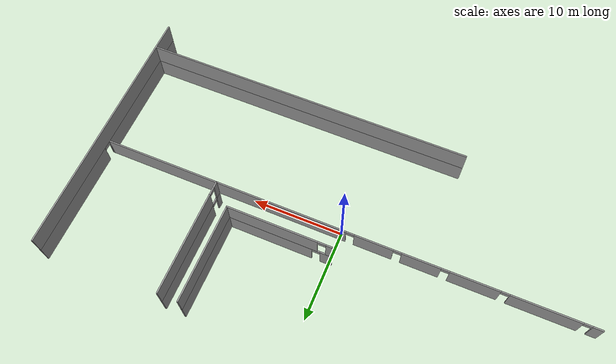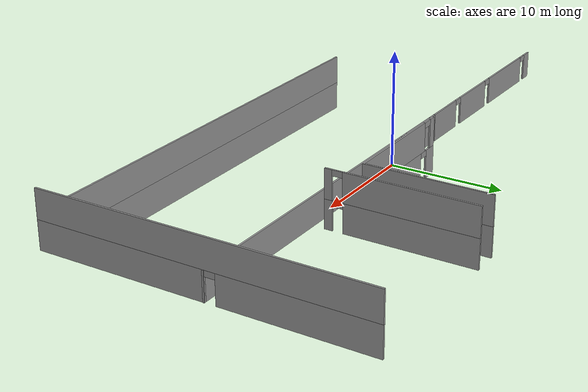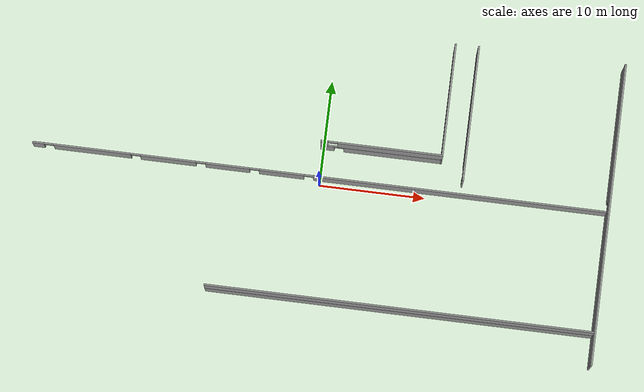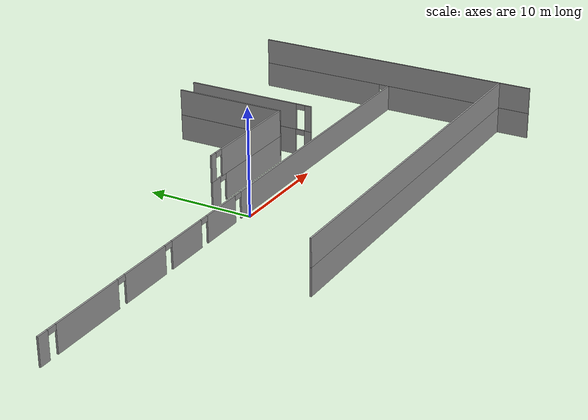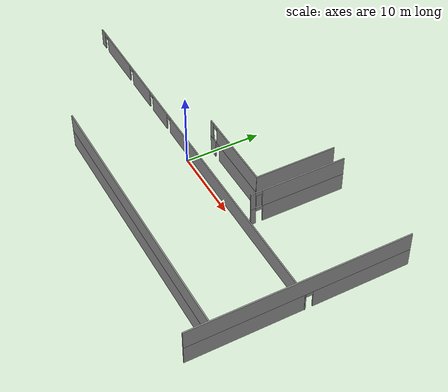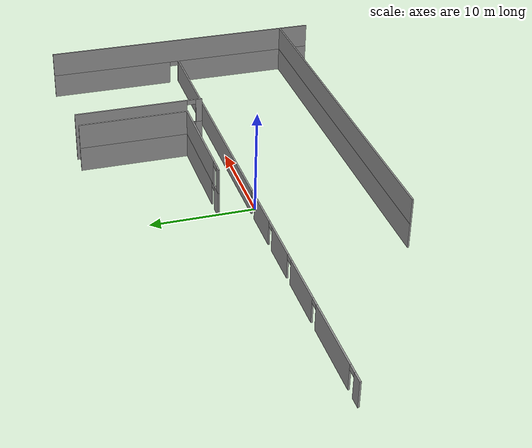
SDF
<sdf version="1.6">
 <model name="Biggest">
  <link name="Wall_104">
   <pose>8.84208 -11.1518 0 0 -0 0</pose>
   <visual name="Wall_104_Visual">
    <pose>0 0 1.25 0 -0 0</pose>
    <geometry><box><size>36.5 0.15 2.5</size></box></geometry>
    <material>
     <script><uri>file://media/materials/scripts/gazebo.material</uri><name>Gazebo/Grey</name></script>
     <ambient>1 1 1 1</ambient>
    </material>
    <meta><layer>0</layer></meta>
   </visual>
   <collision name="Wall_104_Collision">
    <pose>0 0 1.25 0 -0 0</pose>
    <geometry><box><size>36.5 0.15 2.5</size></box></geometry>
    <surface>
     <friction>
      <ode><mu>1</mu><mu2>1</mu2><fdir1>0 0 0</fdir1><slip1>0</slip1><slip2>0</slip2></ode>
      <torsional>
       <coefficient>1</coefficient>
       <patch_radius>0</patch_radius>
       <surface_radius>0</surface_radius>
       <use_patch_radius>1</use_patch_radius>
       <ode><slip>0</slip></ode>
      </torsional>
     </friction>
     <bounce><restitution_coefficient>0</restitution_coefficient><threshold>1e+06</threshold></bounce>
     <contact>
      <collide_without_contact>0</collide_without_contact>
      <collide_without_contact_bitmask>1</collide_without_contact_bitmask>
      <collide_bitmask>1</collide_bitmask>
      <ode>
       <soft_cfm>0</soft_cfm>
       <soft_erp>0.2</soft_erp>
       <kp>1e+13</kp>
       <kd>1</kd>
       <max_vel>0.01</max_vel>
       <min_depth>0</min_depth>
      </ode>
      <bullet>
       <split_impulse>1</split_impulse>
       <split_impulse_penetration_threshold>-0.01</split_impulse_penetration_threshold>
       <soft_cfm>0</soft_cfm>
       <soft_erp>0.2</soft_erp>
       <kp>1e+13</kp>
       <kd>1</kd>
      </bullet>
     </contact>
    </surface>
   </collision>
  </link>
  <link name="Wall_109">
   <pose>5.45478 3.56991 0 0 -0 0</pose>
   <visual name="Wall_109_Visual_1">
    <pose>1.09108 0 1.25 0 -0 0</pose>
    <geometry><box><size>9.31784 0.15 2.5</size></box></geometry>
    <material>
     <script><uri>file://media/materials/scripts/gazebo.material</uri><name>Gazebo/Grey</name></script>
     <ambient>1 1 1 1</ambient>
    </material>
    <meta><layer>0</layer></meta>
   </visual>
   <visual name="Wall_109_Visual_2">
    <pose>-4.01784 0 2.25 0 -0 0</pose>
    <geometry><box><size>0.9 0.15 0.5</size></box></geometry>
    <material>
     <script><uri>file://media/materials/scripts/gazebo.material</uri><name>Gazebo/Grey</name></script>
     <ambient>1 1 1 1</ambient>
    </material>
    <meta><layer>0</layer></meta>
   </visual>
   <visual name="Wall_109_Visual_0">
    <pose>-5.10892 0 1.25 0 -0 0</pose>
    <geometry><box><size>1.28216 0.15 2.5</size></box></geometry>
    <material>
     <script><uri>file://media/materials/scripts/gazebo.material</uri><name>Gazebo/Grey</name></script>
     <ambient>1 1 1 1</ambient>
    </material>
    <meta><layer>0</layer></meta>
   </visual>
   <collision name="Wall_109_Collision_2">
    <pose>-4.01784 0 2.25 0 -0 0</pose>
    <geometry><box><size>0.9 0.15 0.5</size></box></geometry>
    <surface>
     <friction>
      <ode><mu>1</mu><mu2>1</mu2><fdir1>0 0 0</fdir1><slip1>0</slip1><slip2>0</slip2></ode>
      <torsional>
       <coefficient>1</coefficient>
       <patch_radius>0</patch_radius>
       <surface_radius>0</surface_radius>
       <use_patch_radius>1</use_patch_radius>
       <ode><slip>0</slip></ode>
      </torsional>
     </friction>
     <bounce><restitution_coefficient>0</restitution_coefficient><threshold>1e+06</threshold></bounce>
     <contact>
      <collide_without_contact>0</collide_without_contact>
      <collide_without_contact_bitmask>1</collide_without_contact_bitmask>
      <collide_bitmask>1</collide_bitmask>
      <ode>
       <soft_cfm>0</soft_cfm>
       <soft_erp>0.2</soft_erp>
       <kp>1e+13</kp>
       <kd>1</kd>
       <max_vel>0.01</max_vel>
       <min_depth>0</min_depth>
      </ode>
      <bullet>
       <split_impulse>1</split_impulse>
       <split_impulse_penetration_threshold>-0.01</split_impulse_penetration_threshold>
       <soft_cfm>0</soft_cfm>
       <soft_erp>0.2</soft_erp>
       <kp>1e+13</kp>
       <kd>1</kd>
      </bullet>
     </contact>
    </surface>
   </collision>
   <collision name="Wall_109_Collision_1">
    <pose>1.09108 0 1.25 0 -0 0</pose>
    <geometry><box><size>9.31784 0.15 2.5</size></box></geometry>
    <surface>
     <friction>
      <ode><mu>1</mu><mu2>1</mu2><fdir1>0 0 0</fdir1><slip1>0</slip1><slip2>0</slip2></ode>
      <torsional>
       <coefficient>1</coefficient>
       <patch_radius>0</patch_radius>
       <surface_radius>0</surface_radius>
       <use_patch_radius>1</use_patch_radius>
       <ode><slip>0</slip></ode>
      </torsional>
     </friction>
     <bounce><restitution_coefficient>0</restitution_coefficient><threshold>1e+06</threshold></bounce>
     <contact>
      <collide_without_contact>0</collide_without_contact>
      <collide_without_contact_bitmask>1</collide_without_contact_bitmask>
      <collide_bitmask>1</collide_bitmask>
      <ode>
       <soft_cfm>0</soft_cfm>
       <soft_erp>0.2</soft_erp>
       <kp>1e+13</kp>
       <kd>1</kd>
       <max_vel>0.01</max_vel>
       <min_depth>0</min_depth>
      </ode>
      <bullet>
       <split_impulse>1</split_impulse>
       <split_impulse_penetration_threshold>-0.01</split_impulse_penetration_threshold>
       <soft_cfm>0</soft_cfm>
       <soft_erp>0.2</soft_erp>
       <kp>1e+13</kp>
       <kd>1</kd>
      </bullet>
     </contact>
    </surface>
   </collision>
   <collision name="Wall_109_Collision_0">
    <pose>-5.10892 0 1.25 0 -0 0</pose>
    <geometry><box><size>1.28216 0.15 2.5</size></box></geometry>
    <surface>
     <friction>
      <ode><mu>1</mu><mu2>1</mu2><fdir1>0 0 0</fdir1><slip1>0</slip1><slip2>0</slip2></ode>
      <torsional>
       <coefficient>1</coefficient>
       <patch_radius>0</patch_radius>
       <surface_radius>0</surface_radius>
       <use_patch_radius>1</use_patch_radius>
       <ode><slip>0</slip></ode>
      </torsional>
     </friction>
     <bounce><restitution_coefficient>0</restitution_coefficient><threshold>1e+06</threshold></bounce>
     <contact>
      <collide_without_contact>0</collide_without_contact>
      <collide_without_contact_bitmask>1</collide_without_contact_bitmask>
      <collide_bitmask>1</collide_bitmask>
      <ode>
       <soft_cfm>0</soft_cfm>
       <soft_erp>0.2</soft_erp>
       <kp>1e+13</kp>
       <kd>1</kd>
       <max_vel>0.01</max_vel>
       <min_depth>0</min_depth>
      </ode>
      <bullet>
       <split_impulse>1</split_impulse>
       <split_impulse_penetration_threshold>-0.01</split_impulse_penetration_threshold>
       <soft_cfm>0</soft_cfm>
       <soft_erp>0.2</soft_erp>
       <kp>1e+13</kp>
       <kd>1</kd>
      </bullet>
     </contact>
    </surface>
   </collision>
  </link>
  <link name="Wall_110">
   <pose>11.1298 8.86991 0 0 -0 1.5708</pose>
   <visual name="Wall_110_Visual">
    <pose>0 0 1.25 0 -0 0</pose>
    <geometry><box><size>10.75 0.15 2.5</size></box></geometry>
    <material>
     <script><uri>file://media/materials/scripts/gazebo.material</uri><name>Gazebo/Grey</name></script>
     <ambient>1 1 1 1</ambient>
    </material>
    <meta><layer>0</layer></meta>
   </visual>
   <collision name="Wall_110_Collision">
    <pose>0 0 1.25 0 -0 0</pose>
    <geometry><box><size>10.75 0.15 2.5</size></box></geometry>
    <surface>
     <friction>
      <ode><mu>1</mu><mu2>1</mu2><fdir1>0 0 0</fdir1><slip1>0</slip1><slip2>0</slip2></ode>
      <torsional>
       <coefficient>1</coefficient>
       <patch_radius>0</patch_radius>
       <surface_radius>0</surface_radius>
       <use_patch_radius>1</use_patch_radius>
       <ode><slip>0</slip></ode>
      </torsional>
     </friction>
     <bounce><restitution_coefficient>0</restitution_coefficient><threshold>1e+06</threshold></bounce>
     <contact>
      <collide_without_contact>0</collide_without_contact>
      <collide_without_contact_bitmask>1</collide_without_contact_bitmask>
      <collide_bitmask>1</collide_bitmask>
      <ode>
       <soft_cfm>0</soft_cfm>
       <soft_erp>0.2</soft_erp>
       <kp>1e+13</kp>
       <kd>1</kd>
       <max_vel>0.01</max_vel>
       <min_depth>0</min_depth>
      </ode>
      <bullet>
       <split_impulse>1</split_impulse>
       <split_impulse_penetration_threshold>-0.01</split_impulse_penetration_threshold>
       <soft_cfm>0</soft_cfm>
       <soft_erp>0.2</soft_erp>
       <kp>1e+13</kp>
       <kd>1</kd>
      </bullet>
     </contact>
    </surface>
   </collision>
  </link>
  <link name="Wall_116">
   <pose>13.3143 7.89097 0 0 0 -1.5708</pose>
   <visual name="Wall_116_Visual_0">
    <pose>-0.798632 0 1.25 0 -0 0</pose>
    <geometry><box><size>11.1527 0.15 2.5</size></box></geometry>
    <material>
     <script><uri>file://media/materials/scripts/gazebo.material</uri><name>Gazebo/Grey</name></script>
     <ambient>1 1 1 1</ambient>
    </material>
    <meta><layer>0</layer></meta>
   </visual>
   <visual name="Wall_116_Visual_1">
    <pose>6.02637 0 1.25 0 -0 0</pose>
    <geometry><box><size>0.697265 0.15 2.5</size></box></geometry>
    <material>
     <script><uri>file://media/materials/scripts/gazebo.material</uri><name>Gazebo/Grey</name></script>
     <ambient>1 1 1 1</ambient>
    </material>
    <meta><layer>0</layer></meta>
   </visual>
   <visual name="Wall_116_Visual_2">
    <pose>5.22774 0 2.25 0 -0 0</pose>
    <geometry><box><size>0.9 0.15 0.5</size></box></geometry>
    <material>
     <script><uri>file://media/materials/scripts/gazebo.material</uri><name>Gazebo/Grey</name></script>
     <ambient>1 1 1 1</ambient>
    </material>
    <meta><layer>0</layer></meta>
   </visual>
   <collision name="Wall_116_Collision_0">
    <pose>-0.798632 0 1.25 0 -0 0</pose>
    <geometry><box><size>11.1527 0.15 2.5</size></box></geometry>
    <surface>
     <friction>
      <ode><mu>1</mu><mu2>1</mu2><fdir1>0 0 0</fdir1><slip1>0</slip1><slip2>0</slip2></ode>
      <torsional>
       <coefficient>1</coefficient>
       <patch_radius>0</patch_radius>
       <surface_radius>0</surface_radius>
       <use_patch_radius>1</use_patch_radius>
       <ode><slip>0</slip></ode>
      </torsional>
     </friction>
     <bounce><restitution_coefficient>0</restitution_coefficient><threshold>1e+06</threshold></bounce>
     <contact>
      <collide_without_contact>0</collide_without_contact>
      <collide_without_contact_bitmask>1</collide_without_contact_bitmask>
      <collide_bitmask>1</collide_bitmask>
      <ode>
       <soft_cfm>0</soft_cfm>
       <soft_erp>0.2</soft_erp>
       <kp>1e+13</kp>
       <kd>1</kd>
       <max_vel>0.01</max_vel>
       <min_depth>0</min_depth>
      </ode>
      <bullet>
       <split_impulse>1</split_impulse>
       <split_impulse_penetration_threshold>-0.01</split_impulse_penetration_threshold>
       <soft_cfm>0</soft_cfm>
       <soft_erp>0.2</soft_erp>
       <kp>1e+13</kp>
       <kd>1</kd>
      </bullet>
     </contact>
    </surface>
   </collision>
   <collision name="Wall_116_Collision_1">
    <pose>6.02637 0 1.25 0 -0 0</pose>
    <geometry><box><size>0.697265 0.15 2.5</size></box></geometry>
    <surface>
     <friction>
      <ode><mu>1</mu><mu2>1</mu2><fdir1>0 0 0</fdir1><slip1>0</slip1><slip2>0</slip2></ode>
      <torsional>
       <coefficient>1</coefficient>
       <patch_radius>0</patch_radius>
       <surface_radius>0</surface_radius>
       <use_patch_radius>1</use_patch_radius>
       <ode><slip>0</slip></ode>
      </torsional>
     </friction>
     <bounce><restitution_coefficient>0</restitution_coefficient><threshold>1e+06</threshold></bounce>
     <contact>
      <collide_without_contact>0</collide_without_contact>
      <collide_without_contact_bitmask>1</collide_without_contact_bitmask>
      <collide_bitmask>1</collide_bitmask>
      <ode>
       <soft_cfm>0</soft_cfm>
       <soft_erp>0.2</soft_erp>
       <kp>1e+13</kp>
       <kd>1</kd>
       <max_vel>0.01</max_vel>
       <min_depth>0</min_depth>
      </ode>
      <bullet>
       <split_impulse>1</split_impulse>
       <split_impulse_penetration_threshold>-0.01</split_impulse_penetration_threshold>
       <soft_cfm>0</soft_cfm>
       <soft_erp>0.2</soft_erp>
       <kp>1e+13</kp>
       <kd>1</kd>
      </bullet>
     </contact>
    </surface>
   </collision>
   <collision name="Wall_116_Collision_2">
    <pose>5.22774 0 2.25 0 -0 0</pose>
    <geometry><box><size>0.9 0.15 0.5</size></box></geometry>
    <surface>
     <friction>
      <ode><mu>1</mu><mu2>1</mu2><fdir1>0 0 0</fdir1><slip1>0</slip1><slip2>0</slip2></ode>
      <torsional>
       <coefficient>1</coefficient>
       <patch_radius>0</patch_radius>
       <surface_radius>0</surface_radius>
       <use_patch_radius>1</use_patch_radius>
       <ode><slip>0</slip></ode>
      </torsional>
     </friction>
     <bounce><restitution_coefficient>0</restitution_coefficient><threshold>1e+06</threshold></bounce>
     <contact>
      <collide_without_contact>0</collide_without_contact>
      <collide_without_contact_bitmask>1</collide_without_contact_bitmask>
      <collide_bitmask>1</collide_bitmask>
      <ode>
       <soft_cfm>0</soft_cfm>
       <soft_erp>0.2</soft_erp>
       <kp>1e+13</kp>
       <kd>1</kd>
       <max_vel>0.01</max_vel>
       <min_depth>0</min_depth>
      </ode>
      <bullet>
       <split_impulse>1</split_impulse>
       <split_impulse_penetration_threshold>-0.01</split_impulse_penetration_threshold>
       <soft_cfm>0</soft_cfm>
       <soft_erp>0.2</soft_erp>
       <kp>1e+13</kp>
       <kd>1</kd>
      </bullet>
     </contact>
    </surface>
   </collision>
  </link>
  <link name="Wall_119">
   <pose>27.1536 0.010278 2.5 0 0 -1.5708</pose>
   <visual name="Wall_119_Visual">
    <pose>0 0 1.25 0 -0 0</pose>
    <geometry><box><size>28.5 0.15 2.5</size></box></geometry>
    <material>
     <script><uri>file://media/materials/scripts/gazebo.material</uri><name>Gazebo/Grey</name></script>
     <ambient>1 1 1 1</ambient>
    </material>
    <meta><layer>1</layer></meta>
   </visual>
   <collision name="Wall_119_Collision">
    <pose>0 0 1.25 0 -0 0</pose>
    <geometry><box><size>28.5 0.15 2.5</size></box></geometry>
    <surface>
     <friction>
      <ode><mu>1</mu><mu2>1</mu2><fdir1>0 0 0</fdir1><slip1>0</slip1><slip2>0</slip2></ode>
      <torsional>
       <coefficient>1</coefficient>
       <patch_radius>0</patch_radius>
       <surface_radius>0</surface_radius>
       <use_patch_radius>1</use_patch_radius>
       <ode><slip>0</slip></ode>
      </torsional>
     </friction>
     <bounce><restitution_coefficient>0</restitution_coefficient><threshold>1e+06</threshold></bounce>
     <contact>
      <collide_without_contact>0</collide_without_contact>
      <collide_without_contact_bitmask>1</collide_without_contact_bitmask>
      <collide_bitmask>1</collide_bitmask>
      <ode>
       <soft_cfm>0</soft_cfm>
       <soft_erp>0.2</soft_erp>
       <kp>1e+13</kp>
       <kd>1</kd>
       <max_vel>0.01</max_vel>
       <min_depth>0</min_depth>
      </ode>
      <bullet>
       <split_impulse>1</split_impulse>
       <split_impulse_penetration_threshold>-0.01</split_impulse_penetration_threshold>
       <soft_cfm>0</soft_cfm>
       <soft_erp>0.2</soft_erp>
       <kp>1e+13</kp>
       <kd>1</kd>
      </bullet>
     </contact>
    </surface>
   </collision>
  </link>
  <link name="Wall_130">
   <pose>8.84208 -11.1518 2.5 0 -0 0</pose>
   <visual name="Wall_130_Visual">
    <pose>0 0 1.25 0 -0 0</pose>
    <geometry><box><size>36.5 0.15 2.5</size></box></geometry>
    <material>
     <script><uri>file://media/materials/scripts/gazebo.material</uri><name>Gazebo/Grey</name></script>
     <ambient>1 1 1 1</ambient>
    </material>
    <meta><layer>1</layer></meta>
   </visual>
   <collision name="Wall_130_Collision">
    <pose>0 0 1.25 0 -0 0</pose>
    <geometry><box><size>36.5 0.15 2.5</size></box></geometry>
    <surface>
     <friction>
      <ode><mu>1</mu><mu2>1</mu2><fdir1>0 0 0</fdir1><slip1>0</slip1><slip2>0</slip2></ode>
      <torsional>
       <coefficient>1</coefficient>
       <patch_radius>0</patch_radius>
       <surface_radius>0</surface_radius>
       <use_patch_radius>1</use_patch_radius>
       <ode><slip>0</slip></ode>
      </torsional>
     </friction>
     <bounce><restitution_coefficient>0</restitution_coefficient><threshold>1e+06</threshold></bounce>
     <contact>
      <collide_without_contact>0</collide_without_contact>
      <collide_without_contact_bitmask>1</collide_without_contact_bitmask>
      <collide_bitmask>1</collide_bitmask>
      <ode>
       <soft_cfm>0</soft_cfm>
       <soft_erp>0.2</soft_erp>
       <kp>1e+13</kp>
       <kd>1</kd>
       <max_vel>0.01</max_vel>
       <min_depth>0</min_depth>
      </ode>
      <bullet>
       <split_impulse>1</split_impulse>
       <split_impulse_penetration_threshold>-0.01</split_impulse_penetration_threshold>
       <soft_cfm>0</soft_cfm>
       <soft_erp>0.2</soft_erp>
       <kp>1e+13</kp>
       <kd>1</kd>
      </bullet>
     </contact>
    </surface>
   </collision>
  </link>
  <link name="Wall_133">
   <pose>5.45478 3.56991 2.5 0 -0 0</pose>
   <visual name="Wall_133_Visual_0">
    <pose>-5.4052 0 1.25 0 -0 0</pose>
    <geometry><box><size>0.68959 0.15 2.5</size></box></geometry>
    <material>
     <script><uri>file://media/materials/scripts/gazebo.material</uri><name>Gazebo/Grey</name></script>
     <ambient>1 1 1 1</ambient>
    </material>
    <meta><layer>1</layer></meta>
   </visual>
   <visual name="Wall_133_Visual_1">
    <pose>0.794795 0 1.25 0 -0 0</pose>
    <geometry><box><size>9.91041 0.15 2.5</size></box></geometry>
    <material>
     <script><uri>file://media/materials/scripts/gazebo.material</uri><name>Gazebo/Grey</name></script>
     <ambient>1 1 1 1</ambient>
    </material>
    <meta><layer>1</layer></meta>
   </visual>
   <visual name="Wall_133_Visual_2">
    <pose>-4.61041 0 2.25 0 -0 0</pose>
    <geometry><box><size>0.9 0.15 0.5</size></box></geometry>
    <material>
     <script><uri>file://media/materials/scripts/gazebo.material</uri><name>Gazebo/Grey</name></script>
     <ambient>1 1 1 1</ambient>
    </material>
    <meta><layer>1</layer></meta>
   </visual>
   <collision name="Wall_133_Collision_0">
    <pose>-5.4052 0 1.25 0 -0 0</pose>
    <geometry><box><size>0.68959 0.15 2.5</size></box></geometry>
    <surface>
     <friction>
      <ode><mu>1</mu><mu2>1</mu2><fdir1>0 0 0</fdir1><slip1>0</slip1><slip2>0</slip2></ode>
      <torsional>
       <coefficient>1</coefficient>
       <patch_radius>0</patch_radius>
       <surface_radius>0</surface_radius>
       <use_patch_radius>1</use_patch_radius>
       <ode><slip>0</slip></ode>
      </torsional>
     </friction>
     <bounce><restitution_coefficient>0</restitution_coefficient><threshold>1e+06</threshold></bounce>
     <contact>
      <collide_without_contact>0</collide_without_contact>
      <collide_without_contact_bitmask>1</collide_without_contact_bitmask>
      <collide_bitmask>1</collide_bitmask>
      <ode>
       <soft_cfm>0</soft_cfm>
       <soft_erp>0.2</soft_erp>
       <kp>1e+13</kp>
       <kd>1</kd>
       <max_vel>0.01</max_vel>
       <min_depth>0</min_depth>
      </ode>
      <bullet>
       <split_impulse>1</split_impulse>
       <split_impulse_penetration_threshold>-0.01</split_impulse_penetration_threshold>
       <soft_cfm>0</soft_cfm>
       <soft_erp>0.2</soft_erp>
       <kp>1e+13</kp>
       <kd>1</kd>
      </bullet>
     </contact>
    </surface>
   </collision>
   <collision name="Wall_133_Collision_1">
    <pose>0.794795 0 1.25 0 -0 0</pose>
    <geometry><box><size>9.91041 0.15 2.5</size></box></geometry>
    <surface>
     <friction>
      <ode><mu>1</mu><mu2>1</mu2><fdir1>0 0 0</fdir1><slip1>0</slip1><slip2>0</slip2></ode>
      <torsional>
       <coefficient>1</coefficient>
       <patch_radius>0</patch_radius>
       <surface_radius>0</surface_radius>
       <use_patch_radius>1</use_patch_radius>
       <ode><slip>0</slip></ode>
      </torsional>
     </friction>
     <bounce><restitution_coefficient>0</restitution_coefficient><threshold>1e+06</threshold></bounce>
     <contact>
      <collide_without_contact>0</collide_without_contact>
      <collide_without_contact_bitmask>1</collide_without_contact_bitmask>
      <collide_bitmask>1</collide_bitmask>
      <ode>
       <soft_cfm>0</soft_cfm>
       <soft_erp>0.2</soft_erp>
       <kp>1e+13</kp>
       <kd>1</kd>
       <max_vel>0.01</max_vel>
       <min_depth>0</min_depth>
      </ode>
      <bullet>
       <split_impulse>1</split_impulse>
       <split_impulse_penetration_threshold>-0.01</split_impulse_penetration_threshold>
       <soft_cfm>0</soft_cfm>
       <soft_erp>0.2</soft_erp>
       <kp>1e+13</kp>
       <kd>1</kd>
      </bullet>
     </contact>
    </surface>
   </collision>
   <collision name="Wall_133_Collision_2">
    <pose>-4.61041 0 2.25 0 -0 0</pose>
    <geometry><box><size>0.9 0.15 0.5</size></box></geometry>
    <surface>
     <friction>
      <ode><mu>1</mu><mu2>1</mu2><fdir1>0 0 0</fdir1><slip1>0</slip1><slip2>0</slip2></ode>
      <torsional>
       <coefficient>1</coefficient>
       <patch_radius>0</patch_radius>
       <surface_radius>0</surface_radius>
       <use_patch_radius>1</use_patch_radius>
       <ode><slip>0</slip></ode>
      </torsional>
     </friction>
     <bounce><restitution_coefficient>0</restitution_coefficient><threshold>1e+06</threshold></bounce>
     <contact>
      <collide_without_contact>0</collide_without_contact>
      <collide_without_contact_bitmask>1</collide_without_contact_bitmask>
      <collide_bitmask>1</collide_bitmask>
      <ode>
       <soft_cfm>0</soft_cfm>
       <soft_erp>0.2</soft_erp>
       <kp>1e+13</kp>
       <kd>1</kd>
       <max_vel>0.01</max_vel>
       <min_depth>0</min_depth>
      </ode>
      <bullet>
       <split_impulse>1</split_impulse>
       <split_impulse_penetration_threshold>-0.01</split_impulse_penetration_threshold>
       <soft_cfm>0</soft_cfm>
       <soft_erp>0.2</soft_erp>
       <kp>1e+13</kp>
       <kd>1</kd>
      </bullet>
     </contact>
    </surface>
   </collision>
  </link>
  <link name="Wall_134">
   <pose>11.1298 8.86991 2.5 0 -0 1.5708</pose>
   <visual name="Wall_134_Visual">
    <pose>0 0 1.25 0 -0 0</pose>
    <geometry><box><size>10.75 0.15 2.5</size></box></geometry>
    <material>
     <script><uri>file://media/materials/scripts/gazebo.material</uri><name>Gazebo/Grey</name></script>
     <ambient>1 1 1 1</ambient>
    </material>
    <meta><layer>1</layer></meta>
   </visual>
   <collision name="Wall_134_Collision">
    <pose>0 0 1.25 0 -0 0</pose>
    <geometry><box><size>10.75 0.15 2.5</size></box></geometry>
    <surface>
     <friction>
      <ode><mu>1</mu><mu2>1</mu2><fdir1>0 0 0</fdir1><slip1>0</slip1><slip2>0</slip2></ode>
      <torsional>
       <coefficient>1</coefficient>
       <patch_radius>0</patch_radius>
       <surface_radius>0</surface_radius>
       <use_patch_radius>1</use_patch_radius>
       <ode><slip>0</slip></ode>
      </torsional>
     </friction>
     <bounce><restitution_coefficient>0</restitution_coefficient><threshold>1e+06</threshold></bounce>
     <contact>
      <collide_without_contact>0</collide_without_contact>
      <collide_without_contact_bitmask>1</collide_without_contact_bitmask>
      <collide_bitmask>1</collide_bitmask>
      <ode>
       <soft_cfm>0</soft_cfm>
       <soft_erp>0.2</soft_erp>
       <kp>1e+13</kp>
       <kd>1</kd>
       <max_vel>0.01</max_vel>
       <min_depth>0</min_depth>
      </ode>
      <bullet>
       <split_impulse>1</split_impulse>
       <split_impulse_penetration_threshold>-0.01</split_impulse_penetration_threshold>
       <soft_cfm>0</soft_cfm>
       <soft_erp>0.2</soft_erp>
       <kp>1e+13</kp>
       <kd>1</kd>
      </bullet>
     </contact>
    </surface>
   </collision>
  </link>
  <link name="Wall_135">
   <pose>13.3143 7.89097 2.5 0 0 -1.5708</pose>
   <visual name="Wall_135_Visual_0">
    <pose>-0.768708 0 1.25 0 -0 0</pose>
    <geometry><box><size>11.2126 0.15 2.5</size></box></geometry>
    <material>
     <script><uri>file://media/materials/scripts/gazebo.material</uri><name>Gazebo/Grey</name></script>
     <ambient>1 1 1 1</ambient>
    </material>
    <meta><layer>1</layer></meta>
   </visual>
   <visual name="Wall_135_Visual_1">
    <pose>6.05629 0 1.25 0 -0 0</pose>
    <geometry><box><size>0.637416 0.15 2.5</size></box></geometry>
    <material>
     <script><uri>file://media/materials/scripts/gazebo.material</uri><name>Gazebo/Grey</name></script>
     <ambient>1 1 1 1</ambient>
    </material>
    <meta><layer>1</layer></meta>
   </visual>
   <visual name="Wall_135_Visual_2">
    <pose>5.28758 0 2.25 0 -0 0</pose>
    <geometry><box><size>0.9 0.15 0.5</size></box></geometry>
    <material>
     <script><uri>file://media/materials/scripts/gazebo.material</uri><name>Gazebo/Grey</name></script>
     <ambient>1 1 1 1</ambient>
    </material>
    <meta><layer>1</layer></meta>
   </visual>
   <collision name="Wall_135_Collision_0">
    <pose>-0.768708 0 1.25 0 -0 0</pose>
    <geometry><box><size>11.2126 0.15 2.5</size></box></geometry>
    <surface>
     <friction>
      <ode><mu>1</mu><mu2>1</mu2><fdir1>0 0 0</fdir1><slip1>0</slip1><slip2>0</slip2></ode>
      <torsional>
       <coefficient>1</coefficient>
       <patch_radius>0</patch_radius>
       <surface_radius>0</surface_radius>
       <use_patch_radius>1</use_patch_radius>
       <ode><slip>0</slip></ode>
      </torsional>
     </friction>
     <bounce><restitution_coefficient>0</restitution_coefficient><threshold>1e+06</threshold></bounce>
     <contact>
      <collide_without_contact>0</collide_without_contact>
      <collide_without_contact_bitmask>1</collide_without_contact_bitmask>
      <collide_bitmask>1</collide_bitmask>
      <ode>
       <soft_cfm>0</soft_cfm>
       <soft_erp>0.2</soft_erp>
       <kp>1e+13</kp>
       <kd>1</kd>
       <max_vel>0.01</max_vel>
       <min_depth>0</min_depth>
      </ode>
      <bullet>
       <split_impulse>1</split_impulse>
       <split_impulse_penetration_threshold>-0.01</split_impulse_penetration_threshold>
       <soft_cfm>0</soft_cfm>
       <soft_erp>0.2</soft_erp>
       <kp>1e+13</kp>
       <kd>1</kd>
      </bullet>
     </contact>
    </surface>
   </collision>
   <collision name="Wall_135_Collision_1">
    <pose>6.05629 0 1.25 0 -0 0</pose>
    <geometry><box><size>0.637416 0.15 2.5</size></box></geometry>
    <surface>
     <friction>
      <ode><mu>1</mu><mu2>1</mu2><fdir1>0 0 0</fdir1><slip1>0</slip1><slip2>0</slip2></ode>
      <torsional>
       <coefficient>1</coefficient>
       <patch_radius>0</patch_radius>
       <surface_radius>0</surface_radius>
       <use_patch_radius>1</use_patch_radius>
       <ode><slip>0</slip></ode>
      </torsional>
     </friction>
     <bounce><restitution_coefficient>0</restitution_coefficient><threshold>1e+06</threshold></bounce>
     <contact>
      <collide_without_contact>0</collide_without_contact>
      <collide_without_contact_bitmask>1</collide_without_contact_bitmask>
      <collide_bitmask>1</collide_bitmask>
      <ode>
       <soft_cfm>0</soft_cfm>
       <soft_erp>0.2</soft_erp>
       <kp>1e+13</kp>
       <kd>1</kd>
       <max_vel>0.01</max_vel>
       <min_depth>0</min_depth>
      </ode>
      <bullet>
       <split_impulse>1</split_impulse>
       <split_impulse_penetration_threshold>-0.01</split_impulse_penetration_threshold>
       <soft_cfm>0</soft_cfm>
       <soft_erp>0.2</soft_erp>
       <kp>1e+13</kp>
       <kd>1</kd>
      </bullet>
     </contact>
    </surface>
   </collision>
   <collision name="Wall_135_Collision_2">
    <pose>5.28758 0 2.25 0 -0 0</pose>
    <geometry><box><size>0.9 0.15 0.5</size></box></geometry>
    <surface>
     <friction>
      <ode><mu>1</mu><mu2>1</mu2><fdir1>0 0 0</fdir1><slip1>0</slip1><slip2>0</slip2></ode>
      <torsional>
       <coefficient>1</coefficient>
       <patch_radius>0</patch_radius>
       <surface_radius>0</surface_radius>
       <use_patch_radius>1</use_patch_radius>
       <ode><slip>0</slip></ode>
      </torsional>
     </friction>
     <bounce><restitution_coefficient>0</restitution_coefficient><threshold>1e+06</threshold></bounce>
     <contact>
      <collide_without_contact>0</collide_without_contact>
      <collide_without_contact_bitmask>1</collide_without_contact_bitmask>
      <collide_bitmask>1</collide_bitmask>
      <ode>
       <soft_cfm>0</soft_cfm>
       <soft_erp>0.2</soft_erp>
       <kp>1e+13</kp>
       <kd>1</kd>
       <max_vel>0.01</max_vel>
       <min_depth>0</min_depth>
      </ode>
      <bullet>
       <split_impulse>1</split_impulse>
       <split_impulse_penetration_threshold>-0.01</split_impulse_penetration_threshold>
       <soft_cfm>0</soft_cfm>
       <soft_erp>0.2</soft_erp>
       <kp>1e+13</kp>
       <kd>1</kd>
      </bullet>
     </contact>
    </surface>
   </collision>
  </link>
  <link name="Wall_84">
   <pose>27.1536 0.010278 0 0 0 -1.5708</pose>
   <visual name="Wall_84_Visual_0">
    <pose>-7.86931 0 1.25 0 -0 0</pose>
    <geometry><box><size>12.7614 0.15 2.5</size></box></geometry>
    <material>
     <script><uri>file://media/materials/scripts/gazebo.material</uri><name>Gazebo/Grey</name></script>
     <ambient>1 1 1 1</ambient>
    </material>
    <meta><layer>0</layer></meta>
   </visual>
   <visual name="Wall_84_Visual_1">
    <pose>6.83069 0 1.25 0 -0 0</pose>
    <geometry><box><size>14.8386 0.15 2.5</size></box></geometry>
    <material>
     <script><uri>file://media/materials/scripts/gazebo.material</uri><name>Gazebo/Grey</name></script>
     <ambient>1 1 1 1</ambient>
    </material>
    <meta><layer>0</layer></meta>
   </visual>
   <visual name="Wall_84_Visual_2">
    <pose>-1.03862 0 2.25 0 -0 0</pose>
    <geometry><box><size>0.9 0.15 0.5</size></box></geometry>
    <material>
     <script><uri>file://media/materials/scripts/gazebo.material</uri><name>Gazebo/Grey</name></script>
     <ambient>1 1 1 1</ambient>
    </material>
    <meta><layer>0</layer></meta>
   </visual>
   <collision name="Wall_84_Collision_1">
    <pose>6.83069 0 1.25 0 -0 0</pose>
    <geometry><box><size>14.8386 0.15 2.5</size></box></geometry>
    <surface>
     <friction>
      <ode><mu>1</mu><mu2>1</mu2><fdir1>0 0 0</fdir1><slip1>0</slip1><slip2>0</slip2></ode>
      <torsional>
       <coefficient>1</coefficient>
       <patch_radius>0</patch_radius>
       <surface_radius>0</surface_radius>
       <use_patch_radius>1</use_patch_radius>
       <ode><slip>0</slip></ode>
      </torsional>
     </friction>
     <bounce><restitution_coefficient>0</restitution_coefficient><threshold>1e+06</threshold></bounce>
     <contact>
      <collide_without_contact>0</collide_without_contact>
      <collide_without_contact_bitmask>1</collide_without_contact_bitmask>
      <collide_bitmask>1</collide_bitmask>
      <ode>
       <soft_cfm>0</soft_cfm>
       <soft_erp>0.2</soft_erp>
       <kp>1e+13</kp>
       <kd>1</kd>
       <max_vel>0.01</max_vel>
       <min_depth>0</min_depth>
      </ode>
      <bullet>
       <split_impulse>1</split_impulse>
       <split_impulse_penetration_threshold>-0.01</split_impulse_penetration_threshold>
       <soft_cfm>0</soft_cfm>
       <soft_erp>0.2</soft_erp>
       <kp>1e+13</kp>
       <kd>1</kd>
      </bullet>
     </contact>
    </surface>
   </collision>
   <collision name="Wall_84_Collision_0">
    <pose>-7.86931 0 1.25 0 -0 0</pose>
    <geometry><box><size>12.7614 0.15 2.5</size></box></geometry>
    <surface>
     <friction>
      <ode><mu>1</mu><mu2>1</mu2><fdir1>0 0 0</fdir1><slip1>0</slip1><slip2>0</slip2></ode>
      <torsional>
       <coefficient>1</coefficient>
       <patch_radius>0</patch_radius>
       <surface_radius>0</surface_radius>
       <use_patch_radius>1</use_patch_radius>
       <ode><slip>0</slip></ode>
      </torsional>
     </friction>
     <bounce><restitution_coefficient>0</restitution_coefficient><threshold>1e+06</threshold></bounce>
     <contact>
      <collide_without_contact>0</collide_without_contact>
      <collide_without_contact_bitmask>1</collide_without_contact_bitmask>
      <collide_bitmask>1</collide_bitmask>
      <ode>
       <soft_cfm>0</soft_cfm>
       <soft_erp>0.2</soft_erp>
       <kp>1e+13</kp>
       <kd>1</kd>
       <max_vel>0.01</max_vel>
       <min_depth>0</min_depth>
      </ode>
      <bullet>
       <split_impulse>1</split_impulse>
       <split_impulse_penetration_threshold>-0.01</split_impulse_penetration_threshold>
       <soft_cfm>0</soft_cfm>
       <soft_erp>0.2</soft_erp>
       <kp>1e+13</kp>
       <kd>1</kd>
      </bullet>
     </contact>
    </surface>
   </collision>
   <collision name="Wall_84_Collision_2">
    <pose>-1.03862 0 2.25 0 -0 0</pose>
    <geometry><box><size>0.9 0.15 0.5</size></box></geometry>
    <surface>
     <friction>
      <ode><mu>1</mu><mu2>1</mu2><fdir1>0 0 0</fdir1><slip1>0</slip1><slip2>0</slip2></ode>
      <torsional>
       <coefficient>1</coefficient>
       <patch_radius>0</patch_radius>
       <surface_radius>0</surface_radius>
       <use_patch_radius>1</use_patch_radius>
       <ode><slip>0</slip></ode>
      </torsional>
     </friction>
     <bounce><restitution_coefficient>0</restitution_coefficient><threshold>1e+06</threshold></bounce>
     <contact>
      <collide_without_contact>0</collide_without_contact>
      <collide_without_contact_bitmask>1</collide_without_contact_bitmask>
      <collide_bitmask>1</collide_bitmask>
      <ode>
       <soft_cfm>0</soft_cfm>
       <soft_erp>0.2</soft_erp>
       <kp>1e+13</kp>
       <kd>1</kd>
       <max_vel>0.01</max_vel>
       <min_depth>0</min_depth>
      </ode>
      <bullet>
       <split_impulse>1</split_impulse>
       <split_impulse_penetration_threshold>-0.01</split_impulse_penetration_threshold>
       <soft_cfm>0</soft_cfm>
       <soft_erp>0.2</soft_erp>
       <kp>1e+13</kp>
       <kd>1</kd>
      </bullet>
     </contact>
    </surface>
   </collision>
  </link>
  <link name="Wall_92">
   <pose>0.021436 0.51725 0 0 -0 0</pose>
   <visual name="Wall_92_Visual_0">
    <pose>-26.707 0 1.25 0 -0 0</pose>
    <geometry><box><size>1.08602 0.15 2.5</size></box></geometry>
    <material>
     <script><uri>file://media/materials/scripts/gazebo.material</uri><name>Gazebo/Grey</name></script>
     <ambient>1 1 1 1</ambient>
    </material>
    <meta><layer>0</layer></meta>
   </visual>
   <visual name="Wall_92_Visual_1">
    <pose>-21.6015 0 1.25 0 -0 0</pose>
    <geometry><box><size>7.325 0.15 2.5</size></box></geometry>
    <material>
     <script><uri>file://media/materials/scripts/gazebo.material</uri><name>Gazebo/Grey</name></script>
     <ambient>1 1 1 1</ambient>
    </material>
    <meta><layer>0</layer></meta>
   </visual>
   <visual name="Wall_92_Visual_2">
    <pose>-14.4046 0 1.25 0 -0 0</pose>
    <geometry><box><size>5.26875 0.15 2.5</size></box></geometry>
    <material>
     <script><uri>file://media/materials/scripts/gazebo.material</uri><name>Gazebo/Grey</name></script>
     <ambient>1 1 1 1</ambient>
    </material>
    <meta><layer>0</layer></meta>
   </visual>
   <visual name="Wall_92_Visual_3">
    <pose>-8.77697 0 1.25 0 -0 0</pose>
    <geometry><box><size>4.18651 0.15 2.5</size></box></geometry>
    <material>
     <script><uri>file://media/materials/scripts/gazebo.material</uri><name>Gazebo/Grey</name></script>
     <ambient>1 1 1 1</ambient>
    </material>
    <meta><layer>0</layer></meta>
   </visual>
   <visual name="Wall_92_Visual_4">
    <pose>-3.66339 0 1.25 0 -0 0</pose>
    <geometry><box><size>4.24063 0.15 2.5</size></box></geometry>
    <material>
     <script><uri>file://media/materials/scripts/gazebo.material</uri><name>Gazebo/Grey</name></script>
     <ambient>1 1 1 1</ambient>
    </material>
    <meta><layer>0</layer></meta>
   </visual>
   <visual name="Wall_92_Visual_5">
    <pose>13.3035 0 1.25 0 -0 0</pose>
    <geometry><box><size>27.8931 0.15 2.5</size></box></geometry>
    <material>
     <script><uri>file://media/materials/scripts/gazebo.material</uri><name>Gazebo/Grey</name></script>
     <ambient>1 1 1 1</ambient>
    </material>
    <meta><layer>0</layer></meta>
   </visual>
   <visual name="Wall_92_Visual_6">
    <pose>-25.714 0 2.25 0 -0 0</pose>
    <geometry><box><size>0.9 0.15 0.5</size></box></geometry>
    <material>
     <script><uri>file://media/materials/scripts/gazebo.material</uri><name>Gazebo/Grey</name></script>
     <ambient>1 1 1 1</ambient>
    </material>
    <meta><layer>0</layer></meta>
   </visual>
   <visual name="Wall_92_Visual_7">
    <pose>-17.489 0 2.25 0 -0 0</pose>
    <geometry><box><size>0.9 0.15 0.5</size></box></geometry>
    <material>
     <script><uri>file://media/materials/scripts/gazebo.material</uri><name>Gazebo/Grey</name></script>
     <ambient>1 1 1 1</ambient>
    </material>
    <meta><layer>0</layer></meta>
   </visual>
   <visual name="Wall_92_Visual_8">
    <pose>-11.3202 0 2.25 0 -0 0</pose>
    <geometry><box><size>0.9 0.15 0.5</size></box></geometry>
    <material>
     <script><uri>file://media/materials/scripts/gazebo.material</uri><name>Gazebo/Grey</name></script>
     <ambient>1 1 1 1</ambient>
    </material>
    <meta><layer>0</layer></meta>
   </visual>
   <visual name="Wall_92_Visual_9">
    <pose>-6.23371 0 2.25 0 -0 0</pose>
    <geometry><box><size>0.9 0.15 0.5</size></box></geometry>
    <material>
     <script><uri>file://media/materials/scripts/gazebo.material</uri><name>Gazebo/Grey</name></script>
     <ambient>1 1 1 1</ambient>
    </material>
    <meta><layer>0</layer></meta>
   </visual>
   <visual name="Wall_92_Visual_10">
    <pose>-1.09308 0 2.25 0 -0 0</pose>
    <geometry><box><size>0.9 0.15 0.5</size></box></geometry>
    <material>
     <script><uri>file://media/materials/scripts/gazebo.material</uri><name>Gazebo/Grey</name></script>
     <ambient>1 1 1 1</ambient>
    </material>
    <meta><layer>0</layer></meta>
   </visual>
   <collision name="Wall_92_Collision_0">
    <pose>-26.707 0 1.25 0 -0 0</pose>
    <geometry><box><size>1.08602 0.15 2.5</size></box></geometry>
    <surface>
     <friction>
      <ode><mu>1</mu><mu2>1</mu2><fdir1>0 0 0</fdir1><slip1>0</slip1><slip2>0</slip2></ode>
      <torsional>
       <coefficient>1</coefficient>
       <patch_radius>0</patch_radius>
       <surface_radius>0</surface_radius>
       <use_patch_radius>1</use_patch_radius>
       <ode><slip>0</slip></ode>
      </torsional>
     </friction>
     <bounce><restitution_coefficient>0</restitution_coefficient><threshold>1e+06</threshold></bounce>
     <contact>
      <collide_without_contact>0</collide_without_contact>
      <collide_without_contact_bitmask>1</collide_without_contact_bitmask>
      <collide_bitmask>1</collide_bitmask>
      <ode>
       <soft_cfm>0</soft_cfm>
       <soft_erp>0.2</soft_erp>
       <kp>1e+13</kp>
       <kd>1</kd>
       <max_vel>0.01</max_vel>
       <min_depth>0</min_depth>
      </ode>
      <bullet>
       <split_impulse>1</split_impulse>
       <split_impulse_penetration_threshold>-0.01</split_impulse_penetration_threshold>
       <soft_cfm>0</soft_cfm>
       <soft_erp>0.2</soft_erp>
       <kp>1e+13</kp>
       <kd>1</kd>
      </bullet>
     </contact>
    </surface>
   </collision>
   <collision name="Wall_92_Collision_1">
    <pose>-21.6015 0 1.25 0 -0 0</pose>
    <geometry><box><size>7.325 0.15 2.5</size></box></geometry>
    <surface>
     <friction>
      <ode><mu>1</mu><mu2>1</mu2><fdir1>0 0 0</fdir1><slip1>0</slip1><slip2>0</slip2></ode>
      <torsional>
       <coefficient>1</coefficient>
       <patch_radius>0</patch_radius>
       <surface_radius>0</surface_radius>
       <use_patch_radius>1</use_patch_radius>
       <ode><slip>0</slip></ode>
      </torsional>
     </friction>
     <bounce><restitution_coefficient>0</restitution_coefficient><threshold>1e+06</threshold></bounce>
     <contact>
      <collide_without_contact>0</collide_without_contact>
      <collide_without_contact_bitmask>1</collide_without_contact_bitmask>
      <collide_bitmask>1</collide_bitmask>
      <ode>
       <soft_cfm>0</soft_cfm>
       <soft_erp>0.2</soft_erp>
       <kp>1e+13</kp>
       <kd>1</kd>
       <max_vel>0.01</max_vel>
       <min_depth>0</min_depth>
      </ode>
      <bullet>
       <split_impulse>1</split_impulse>
       <split_impulse_penetration_threshold>-0.01</split_impulse_penetration_threshold>
       <soft_cfm>0</soft_cfm>
       <soft_erp>0.2</soft_erp>
       <kp>1e+13</kp>
       <kd>1</kd>
      </bullet>
     </contact>
    </surface>
   </collision>
   <collision name="Wall_92_Collision_2">
    <pose>-14.4046 0 1.25 0 -0 0</pose>
    <geometry><box><size>5.26875 0.15 2.5</size></box></geometry>
    <surface>
     <friction>
      <ode><mu>1</mu><mu2>1</mu2><fdir1>0 0 0</fdir1><slip1>0</slip1><slip2>0</slip2></ode>
      <torsional>
       <coefficient>1</coefficient>
       <patch_radius>0</patch_radius>
       <surface_radius>0</surface_radius>
       <use_patch_radius>1</use_patch_radius>
       <ode><slip>0</slip></ode>
      </torsional>
     </friction>
     <bounce><restitution_coefficient>0</restitution_coefficient><threshold>1e+06</threshold></bounce>
     <contact>
      <collide_without_contact>0</collide_without_contact>
      <collide_without_contact_bitmask>1</collide_without_contact_bitmask>
      <collide_bitmask>1</collide_bitmask>
      <ode>
       <soft_cfm>0</soft_cfm>
       <soft_erp>0.2</soft_erp>
       <kp>1e+13</kp>
       <kd>1</kd>
       <max_vel>0.01</max_vel>
       <min_depth>0</min_depth>
      </ode>
      <bullet>
       <split_impulse>1</split_impulse>
       <split_impulse_penetration_threshold>-0.01</split_impulse_penetration_threshold>
       <soft_cfm>0</soft_cfm>
       <soft_erp>0.2</soft_erp>
       <kp>1e+13</kp>
       <kd>1</kd>
      </bullet>
     </contact>
    </surface>
   </collision>
   <collision name="Wall_92_Collision_3">
    <pose>-8.77697 0 1.25 0 -0 0</pose>
    <geometry><box><size>4.18651 0.15 2.5</size></box></geometry>
    <surface>
     <friction>
      <ode><mu>1</mu><mu2>1</mu2><fdir1>0 0 0</fdir1><slip1>0</slip1><slip2>0</slip2></ode>
      <torsional>
       <coefficient>1</coefficient>
       <patch_radius>0</patch_radius>
       <surface_radius>0</surface_radius>
       <use_patch_radius>1</use_patch_radius>
       <ode><slip>0</slip></ode>
      </torsional>
     </friction>
     <bounce><restitution_coefficient>0</restitution_coefficient><threshold>1e+06</threshold></bounce>
     <contact>
      <collide_without_contact>0</collide_without_contact>
      <collide_without_contact_bitmask>1</collide_without_contact_bitmask>
      <collide_bitmask>1</collide_bitmask>
      <ode>
       <soft_cfm>0</soft_cfm>
       <soft_erp>0.2</soft_erp>
       <kp>1e+13</kp>
       <kd>1</kd>
       <max_vel>0.01</max_vel>
       <min_depth>0</min_depth>
      </ode>
      <bullet>
       <split_impulse>1</split_impulse>
       <split_impulse_penetration_threshold>-0.01</split_impulse_penetration_threshold>
       <soft_cfm>0</soft_cfm>
       <soft_erp>0.2</soft_erp>
       <kp>1e+13</kp>
       <kd>1</kd>
      </bullet>
     </contact>
    </surface>
   </collision>
   <collision name="Wall_92_Collision_4">
    <pose>-3.66339 0 1.25 0 -0 0</pose>
    <geometry><box><size>4.24063 0.15 2.5</size></box></geometry>
    <surface>
     <friction>
      <ode><mu>1</mu><mu2>1</mu2><fdir1>0 0 0</fdir1><slip1>0</slip1><slip2>0</slip2></ode>
      <torsional>
       <coefficient>1</coefficient>
       <patch_radius>0</patch_radius>
       <surface_radius>0</surface_radius>
       <use_patch_radius>1</use_patch_radius>
       <ode><slip>0</slip></ode>
      </torsional>
     </friction>
     <bounce><restitution_coefficient>0</restitution_coefficient><threshold>1e+06</threshold></bounce>
     <contact>
      <collide_without_contact>0</collide_without_contact>
      <collide_without_contact_bitmask>1</collide_without_contact_bitmask>
      <collide_bitmask>1</collide_bitmask>
      <ode>
       <soft_cfm>0</soft_cfm>
       <soft_erp>0.2</soft_erp>
       <kp>1e+13</kp>
       <kd>1</kd>
       <max_vel>0.01</max_vel>
       <min_depth>0</min_depth>
      </ode>
      <bullet>
       <split_impulse>1</split_impulse>
       <split_impulse_penetration_threshold>-0.01</split_impulse_penetration_threshold>
       <soft_cfm>0</soft_cfm>
       <soft_erp>0.2</soft_erp>
       <kp>1e+13</kp>
       <kd>1</kd>
      </bullet>
     </contact>
    </surface>
   </collision>
   <collision name="Wall_92_Collision_5">
    <pose>13.3035 0 1.25 0 -0 0</pose>
    <geometry><box><size>27.8931 0.15 2.5</size></box></geometry>
    <surface>
     <friction>
      <ode><mu>1</mu><mu2>1</mu2><fdir1>0 0 0</fdir1><slip1>0</slip1><slip2>0</slip2></ode>
      <torsional>
       <coefficient>1</coefficient>
       <patch_radius>0</patch_radius>
       <surface_radius>0</surface_radius>
       <use_patch_radius>1</use_patch_radius>
       <ode><slip>0</slip></ode>
      </torsional>
     </friction>
     <bounce><restitution_coefficient>0</restitution_coefficient><threshold>1e+06</threshold></bounce>
     <contact>
      <collide_without_contact>0</collide_without_contact>
      <collide_without_contact_bitmask>1</collide_without_contact_bitmask>
      <collide_bitmask>1</collide_bitmask>
      <ode>
       <soft_cfm>0</soft_cfm>
       <soft_erp>0.2</soft_erp>
       <kp>1e+13</kp>
       <kd>1</kd>
       <max_vel>0.01</max_vel>
       <min_depth>0</min_depth>
      </ode>
      <bullet>
       <split_impulse>1</split_impulse>
       <split_impulse_penetration_threshold>-0.01</split_impulse_penetration_threshold>
       <soft_cfm>0</soft_cfm>
       <soft_erp>0.2</soft_erp>
       <kp>1e+13</kp>
       <kd>1</kd>
      </bullet>
     </contact>
    </surface>
   </collision>
   <collision name="Wall_92_Collision_6">
    <pose>-25.714 0 2.25 0 -0 0</pose>
    <geometry><box><size>0.9 0.15 0.5</size></box></geometry>
    <surface>
     <friction>
      <ode><mu>1</mu><mu2>1</mu2><fdir1>0 0 0</fdir1><slip1>0</slip1><slip2>0</slip2></ode>
      <torsional>
       <coefficient>1</coefficient>
       <patch_radius>0</patch_radius>
       <surface_radius>0</surface_radius>
       <use_patch_radius>1</use_patch_radius>
       <ode><slip>0</slip></ode>
      </torsional>
     </friction>
     <bounce><restitution_coefficient>0</restitution_coefficient><threshold>1e+06</threshold></bounce>
     <contact>
      <collide_without_contact>0</collide_without_contact>
      <collide_without_contact_bitmask>1</collide_without_contact_bitmask>
      <collide_bitmask>1</collide_bitmask>
      <ode>
       <soft_cfm>0</soft_cfm>
       <soft_erp>0.2</soft_erp>
       <kp>1e+13</kp>
       <kd>1</kd>
       <max_vel>0.01</max_vel>
       <min_depth>0</min_depth>
      </ode>
      <bullet>
       <split_impulse>1</split_impulse>
       <split_impulse_penetration_threshold>-0.01</split_impulse_penetration_threshold>
       <soft_cfm>0</soft_cfm>
       <soft_erp>0.2</soft_erp>
       <kp>1e+13</kp>
       <kd>1</kd>
      </bullet>
     </contact>
    </surface>
   </collision>
   <collision name="Wall_92_Collision_7">
    <pose>-17.489 0 2.25 0 -0 0</pose>
    <geometry><box><size>0.9 0.15 0.5</size></box></geometry>
    <surface>
     <friction>
      <ode><mu>1</mu><mu2>1</mu2><fdir1>0 0 0</fdir1><slip1>0</slip1><slip2>0</slip2></ode>
      <torsional>
       <coefficient>1</coefficient>
       <patch_radius>0</patch_radius>
       <surface_radius>0</surface_radius>
       <use_patch_radius>1</use_patch_radius>
       <ode><slip>0</slip></ode>
      </torsional>
     </friction>
     <bounce><restitution_coefficient>0</restitution_coefficient><threshold>1e+06</threshold></bounce>
     <contact>
      <collide_without_contact>0</collide_without_contact>
      <collide_without_contact_bitmask>1</collide_without_contact_bitmask>
      <collide_bitmask>1</collide_bitmask>
      <ode>
       <soft_cfm>0</soft_cfm>
       <soft_erp>0.2</soft_erp>
       <kp>1e+13</kp>
       <kd>1</kd>
       <max_vel>0.01</max_vel>
       <min_depth>0</min_depth>
      </ode>
      <bullet>
       <split_impulse>1</split_impulse>
       <split_impulse_penetration_threshold>-0.01</split_impulse_penetration_threshold>
       <soft_cfm>0</soft_cfm>
       <soft_erp>0.2</soft_erp>
       <kp>1e+13</kp>
       <kd>1</kd>
      </bullet>
     </contact>
    </surface>
   </collision>
   <collision name="Wall_92_Collision_8">
    <pose>-11.3202 0 2.25 0 -0 0</pose>
    <geometry><box><size>0.9 0.15 0.5</size></box></geometry>
    <surface>
     <friction>
      <ode><mu>1</mu><mu2>1</mu2><fdir1>0 0 0</fdir1><slip1>0</slip1><slip2>0</slip2></ode>
      <torsional>
       <coefficient>1</coefficient>
       <patch_radius>0</patch_radius>
       <surface_radius>0</surface_radius>
       <use_patch_radius>1</use_patch_radius>
       <ode><slip>0</slip></ode>
      </torsional>
     </friction>
     <bounce><restitution_coefficient>0</restitution_coefficient><threshold>1e+06</threshold></bounce>
     <contact>
      <collide_without_contact>0</collide_without_contact>
      <collide_without_contact_bitmask>1</collide_without_contact_bitmask>
      <collide_bitmask>1</collide_bitmask>
      <ode>
       <soft_cfm>0</soft_cfm>
       <soft_erp>0.2</soft_erp>
       <kp>1e+13</kp>
       <kd>1</kd>
       <max_vel>0.01</max_vel>
       <min_depth>0</min_depth>
      </ode>
      <bullet>
       <split_impulse>1</split_impulse>
       <split_impulse_penetration_threshold>-0.01</split_impulse_penetration_threshold>
       <soft_cfm>0</soft_cfm>
       <soft_erp>0.2</soft_erp>
       <kp>1e+13</kp>
       <kd>1</kd>
      </bullet>
     </contact>
    </surface>
   </collision>
   <collision name="Wall_92_Collision_9">
    <pose>-6.23371 0 2.25 0 -0 0</pose>
    <geometry><box><size>0.9 0.15 0.5</size></box></geometry>
    <surface>
     <friction>
      <ode><mu>1</mu><mu2>1</mu2><fdir1>0 0 0</fdir1><slip1>0</slip1><slip2>0</slip2></ode>
      <torsional>
       <coefficient>1</coefficient>
       <patch_radius>0</patch_radius>
       <surface_radius>0</surface_radius>
       <use_patch_radius>1</use_patch_radius>
       <ode><slip>0</slip></ode>
      </torsional>
     </friction>
     <bounce><restitution_coefficient>0</restitution_coefficient><threshold>1e+06</threshold></bounce>
     <contact>
      <collide_without_contact>0</collide_without_contact>
      <collide_without_contact_bitmask>1</collide_without_contact_bitmask>
      <collide_bitmask>1</collide_bitmask>
      <ode>
       <soft_cfm>0</soft_cfm>
       <soft_erp>0.2</soft_erp>
       <kp>1e+13</kp>
       <kd>1</kd>
       <max_vel>0.01</max_vel>
       <min_depth>0</min_depth>
      </ode>
      <bullet>
       <split_impulse>1</split_impulse>
       <split_impulse_penetration_threshold>-0.01</split_impulse_penetration_threshold>
       <soft_cfm>0</soft_cfm>
       <soft_erp>0.2</soft_erp>
       <kp>1e+13</kp>
       <kd>1</kd>
      </bullet>
     </contact>
    </surface>
   </collision>
   <collision name="Wall_92_Collision_10">
    <pose>-1.09308 0 2.25 0 -0 0</pose>
    <geometry><box><size>0.9 0.15 0.5</size></box></geometry>
    <surface>
     <friction>
      <ode><mu>1</mu><mu2>1</mu2><fdir1>0 0 0</fdir1><slip1>0</slip1><slip2>0</slip2></ode>
      <torsional>
       <coefficient>1</coefficient>
       <patch_radius>0</patch_radius>
       <surface_radius>0</surface_radius>
       <use_patch_radius>1</use_patch_radius>
       <ode><slip>0</slip></ode>
      </torsional>
     </friction>
     <bounce><restitution_coefficient>0</restitution_coefficient><threshold>1e+06</threshold></bounce>
     <contact>
      <collide_without_contact>0</collide_without_contact>
      <collide_without_contact_bitmask>1</collide_without_contact_bitmask>
      <collide_bitmask>1</collide_bitmask>
      <ode>
       <soft_cfm>0</soft_cfm>
       <soft_erp>0.2</soft_erp>
       <kp>1e+13</kp>
       <kd>1</kd>
       <max_vel>0.01</max_vel>
       <min_depth>0</min_depth>
      </ode>
      <bullet>
       <split_impulse>1</split_impulse>
       <split_impulse_penetration_threshold>-0.01</split_impulse_penetration_threshold>
       <soft_cfm>0</soft_cfm>
       <soft_erp>0.2</soft_erp>
       <kp>1e+13</kp>
       <kd>1</kd>
      </bullet>
     </contact>
    </surface>
   </collision>
  </link>
  <static>1</static>
 </model>
</sdf>
